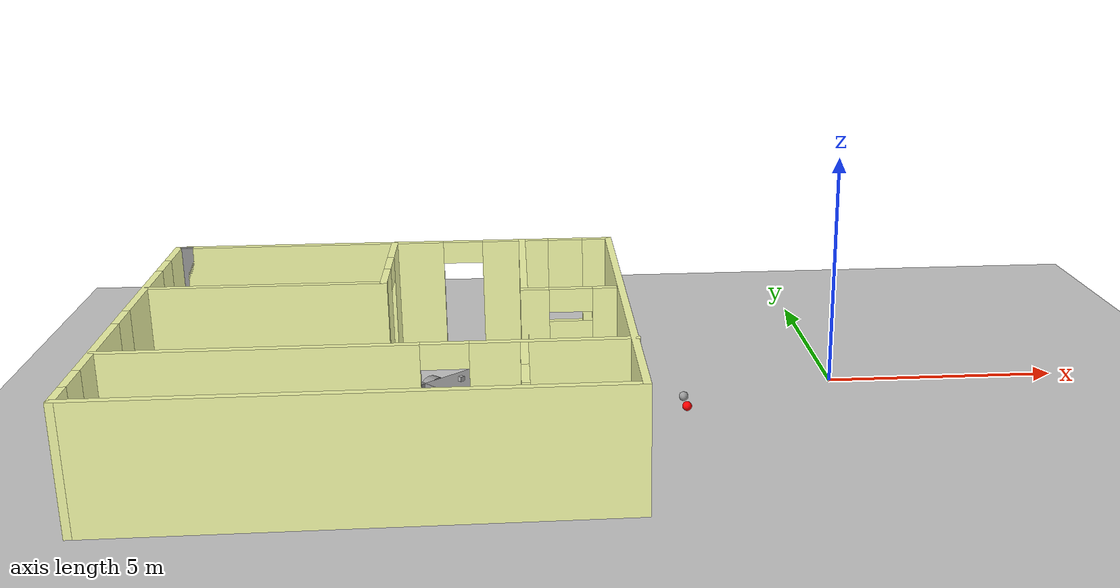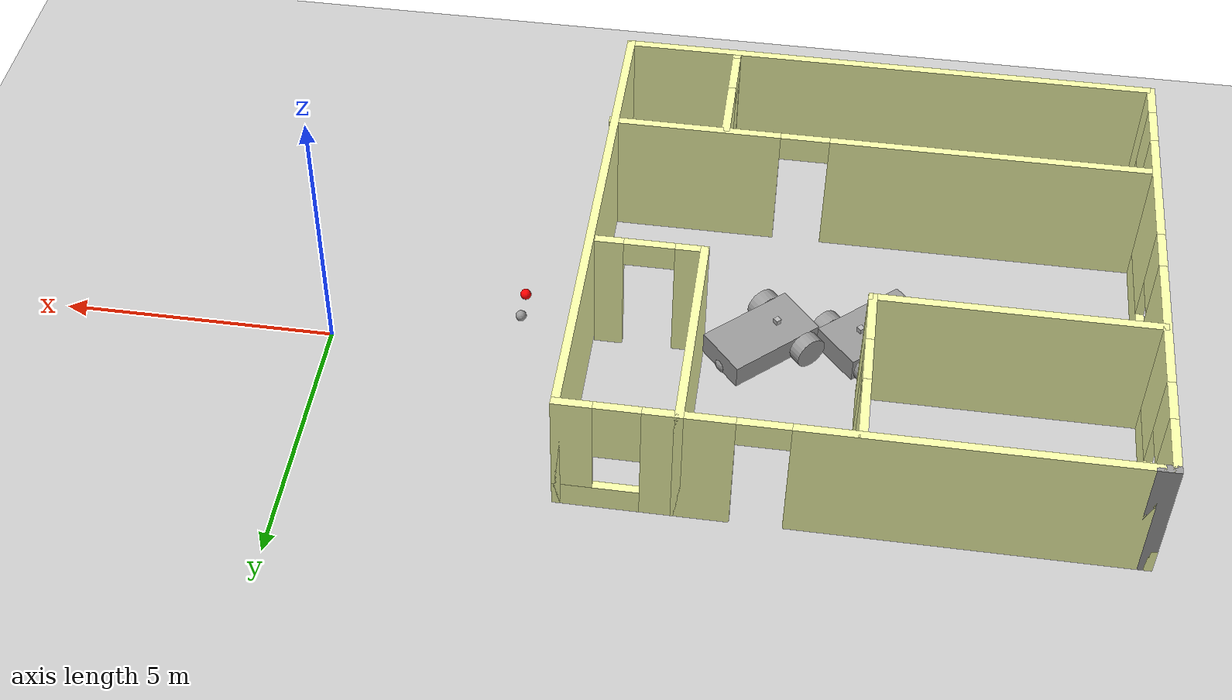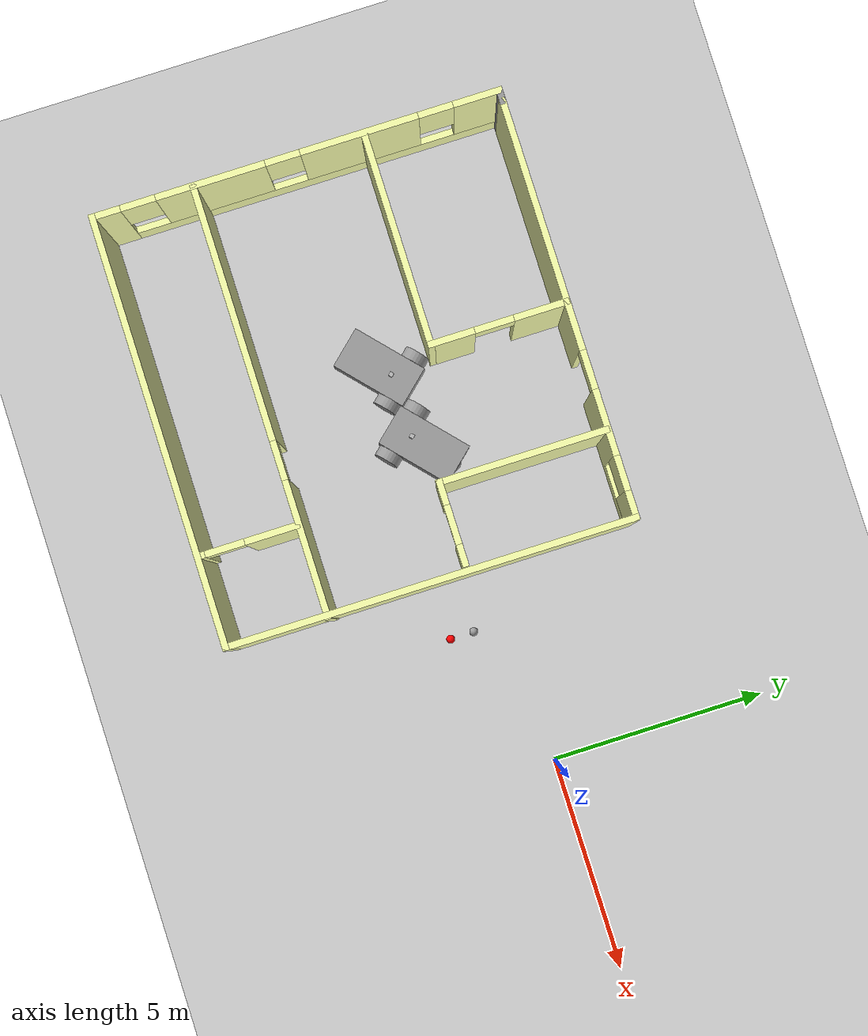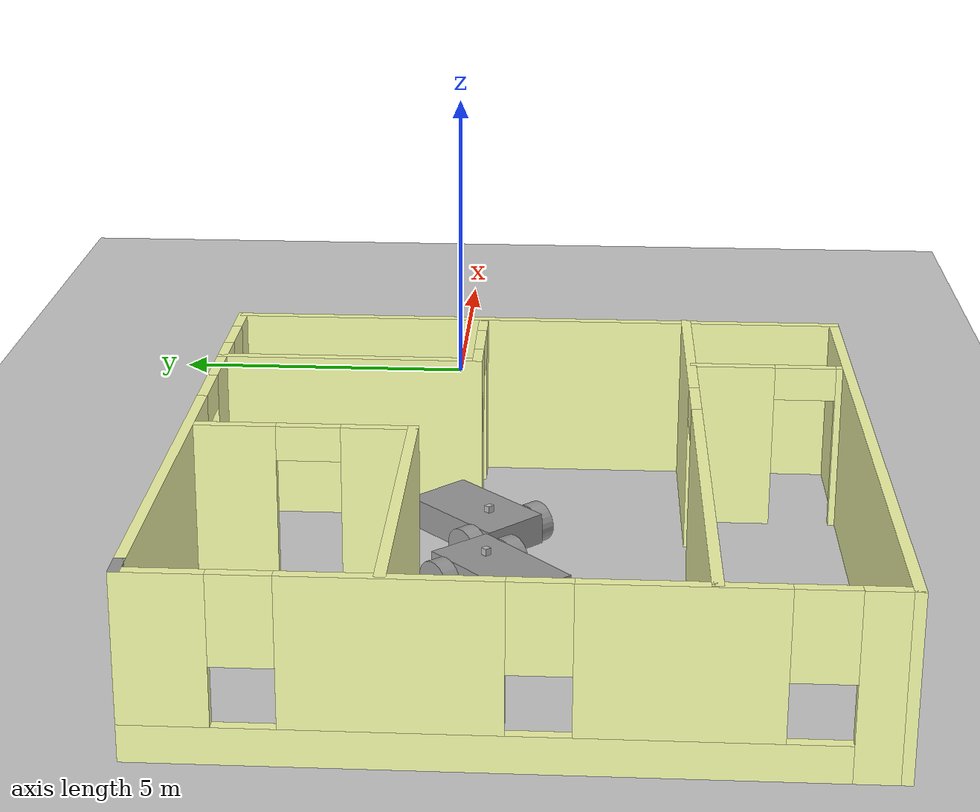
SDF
<sdf version="1.6">
 <world name="default">
  <plugin name="myworld" filename="libmyworld.so"/>
  <light name="sun" type="directional">
   <pose>0 0 10 0 -0 0</pose>
   <diffuse>0.8 0.8 0.8 1</diffuse>
   <specular>0.2 0.2 0.2 1</specular>
   <attenuation>
    <range>1000</range>
    <constant>0.9</constant>
    <linear>0.01</linear>
    <quadratic>0.001</quadratic>
   </attenuation>
   <direction>-0.5 0.1 -0.9</direction>
  </light>
  <model name="ground_plane">
   <static>1</static>
   <link name="link">
    <collision name="collision">
     <geometry><plane><normal>0 0 1</normal><size>100 100</size></plane></geometry>
     <surface><friction><ode><mu>100</mu><mu2>50</mu2></ode></friction></surface>
    </collision>
    <visual name="visual">
     <cast_shadows>0</cast_shadows>
     <geometry><plane><normal>0 0 1</normal><size>100 100</size></plane></geometry>
     <material>
      <script><uri>file://media/materials/scripts/gazebo.material</uri><name>Gazebo/Grey</name></script>
     </material>
    </visual>
   </link>
  </model>
  <gravity>0 0 -9.8</gravity>
  <magnetic_field>6e-06 2.3e-05 -4.2e-05</magnetic_field>
  <atmosphere type="adiabatic"/>
  <physics name="default_physics" default="0" type="ode">
   <max_step_size>0.001</max_step_size>
   <real_time_factor>1</real_time_factor>
   <real_time_update_rate>1000</real_time_update_rate>
  </physics>
  <scene><ambient>0.4 0.4 0.4 1</ambient><background>0.7 0.7 0.7 1</background><shadows>1</shadows></scene>
  <spherical_coordinates>
   <surface_model>EARTH_WGS84</surface_model>
   <latitude_deg>0</latitude_deg>
   <longitude_deg>0</longitude_deg>
   <elevation>0</elevation>
   <heading_deg>0</heading_deg>
  </spherical_coordinates>
  <model name="MyHouse">
   <pose>-9.5792 -1.47155 0 0 -0 0</pose>
   <link name="Wall_0">
    <pose>0.110625 4.675 0 0 -0 0</pose>
    <visual name="Wall_0_Visual_0">
     <pose>-1.95495 0 1.25 0 -0 0</pose>
     <geometry><box><size>5.84009 0.15 2.5</size></box></geometry>
     <material>
      <script><uri>file://media/materials/scripts/gazebo.material</uri><name>Gazebo/Grey</name></script>
      <ambient>0.972549 1 0.670588 1</ambient>
     </material>
     <meta><layer>0</layer></meta>
    </visual>
    <collision name="Wall_0_Collision_0">
     <geometry><box><size>5.84009 0.15 2.5</size></box></geometry>
     <pose>-1.95495 0 1.25 0 -0 0</pose>
    </collision>
    <visual name="Wall_0_Visual_1">
     <pose>2.62679 0 1.25 0 -0 0</pose>
     <geometry><box><size>1.5234 0.15 2.5</size></box></geometry>
     <material>
      <script><uri>file://media/materials/scripts/gazebo.material</uri><name>Gazebo/Grey</name></script>
      <ambient>0.972549 1 0.670588 1</ambient>
     </material>
     <meta><layer>0</layer></meta>
    </visual>
    <collision name="Wall_0_Collision_1">
     <geometry><box><size>1.5234 0.15 2.5</size></box></geometry>
     <pose>2.62679 0 1.25 0 -0 0</pose>
    </collision>
    <visual name="Wall_0_Visual_2">
     <pose>4.13175 0 0.25 0 -0 0</pose>
     <geometry><box><size>1.4865 0.15 0.5</size></box></geometry>
     <material>
      <script><uri>file://media/materials/scripts/gazebo.material</uri><name>Gazebo/Grey</name></script>
      <ambient>0.972549 1 0.670588 1</ambient>
     </material>
     <meta><layer>0</layer></meta>
    </visual>
    <collision name="Wall_0_Collision_2">
     <geometry><box><size>1.4865 0.15 0.5</size></box></geometry>
     <pose>4.13175 0 0.25 0 -0 0</pose>
    </collision>
    <visual name="Wall_0_Visual_3">
     <pose>4.53175 0 1.5 0 -0 0</pose>
     <geometry><box><size>0.686505 0.15 2</size></box></geometry>
     <material>
      <script><uri>file://media/materials/scripts/gazebo.material</uri><name>Gazebo/Grey</name></script>
      <ambient>0.972549 1 0.670588 1</ambient>
     </material>
     <meta><layer>0</layer></meta>
    </visual>
    <collision name="Wall_0_Collision_3">
     <geometry><box><size>0.686505 0.15 2</size></box></geometry>
     <pose>4.53175 0 1.5 0 -0 0</pose>
    </collision>
    <visual name="Wall_0_Visual_4">
     <pose>3.7885 0 1.9 0 -0 0</pose>
     <geometry><box><size>0.8 0.15 1.2</size></box></geometry>
     <material>
      <script><uri>file://media/materials/scripts/gazebo.material</uri><name>Gazebo/Grey</name></script>
      <ambient>0.972549 1 0.670588 1</ambient>
     </material>
     <meta><layer>0</layer></meta>
    </visual>
    <collision name="Wall_0_Collision_4">
     <geometry><box><size>0.8 0.15 1.2</size></box></geometry>
     <pose>3.7885 0 1.9 0 -0 0</pose>
    </collision>
    <visual name="Wall_0_Visual_5">
     <pose>1.41509 0 2.25 0 -0 0</pose>
     <geometry><box><size>0.9 0.15 0.5</size></box></geometry>
     <material>
      <script><uri>file://media/materials/scripts/gazebo.material</uri><name>Gazebo/Grey</name></script>
      <ambient>0.972549 1 0.670588 1</ambient>
     </material>
     <meta><layer>0</layer></meta>
    </visual>
    <collision name="Wall_0_Collision_5">
     <geometry><box><size>0.9 0.15 0.5</size></box></geometry>
     <pose>1.41509 0 2.25 0 -0 0</pose>
    </collision>
   </link>
   <link name="Wall_1">
    <collision name="Wall_1_Collision">
     <geometry><box><size>9.5 0.15 2.5</size></box></geometry>
     <pose>0 0 1.25 0 -0 0</pose>
    </collision>
    <visual name="Wall_1_Visual">
     <pose>0 0 1.25 0 -0 0</pose>
     <geometry><box><size>9.5 0.15 2.5</size></box></geometry>
     <material>
      <script><uri>file://media/materials/scripts/gazebo.material</uri><name>Gazebo/Grey</name></script>
      <ambient>0.972549 1 0.670588 1</ambient>
     </material>
     <meta><layer>0</layer></meta>
    </visual>
    <pose>4.91062 0 0 0 0 -1.5708</pose>
   </link>
   <link name="Wall_10">
    <pose>3.81844 0.825 0 0 -0 0</pose>
    <visual name="Wall_10_Visual_0">
     <pose>-0.704774 0 1.25 0 -0 0</pose>
     <geometry><box><size>0.590451 0.15 2.5</size></box></geometry>
     <material>
      <script><uri>file://media/materials/scripts/gazebo.material</uri><name>Gazebo/Grey</name></script>
      <ambient>0.972549 1 0.670588 1</ambient>
     </material>
     <meta><layer>0</layer></meta>
    </visual>
    <collision name="Wall_10_Collision_0">
     <geometry><box><size>0.590451 0.15 2.5</size></box></geometry>
     <pose>-0.704774 0 1.25 0 -0 0</pose>
    </collision>
    <visual name="Wall_10_Visual_1">
     <pose>0.745226 0 1.25 0 -0 0</pose>
     <geometry><box><size>0.509549 0.15 2.5</size></box></geometry>
     <material>
      <script><uri>file://media/materials/scripts/gazebo.material</uri><name>Gazebo/Grey</name></script>
      <ambient>0.972549 1 0.670588 1</ambient>
     </material>
     <meta><layer>0</layer></meta>
    </visual>
    <collision name="Wall_10_Collision_1">
     <geometry><box><size>0.509549 0.15 2.5</size></box></geometry>
     <pose>0.745226 0 1.25 0 -0 0</pose>
    </collision>
    <visual name="Wall_10_Visual_2">
     <pose>0.040451 0 2.25 0 -0 0</pose>
     <geometry><box><size>0.9 0.15 0.5</size></box></geometry>
     <material>
      <script><uri>file://media/materials/scripts/gazebo.material</uri><name>Gazebo/Grey</name></script>
      <ambient>0.972549 1 0.670588 1</ambient>
     </material>
     <meta><layer>0</layer></meta>
    </visual>
    <collision name="Wall_10_Collision_2">
     <geometry><box><size>0.9 0.15 0.5</size></box></geometry>
     <pose>0.040451 0 2.25 0 -0 0</pose>
    </collision>
   </link>
   <link name="Wall_12">
    <pose>0.014376 -2.36475 0 0 -0 0</pose>
    <visual name="Wall_12_Visual_0">
     <pose>-2.03973 0 1.25 0 -0 0</pose>
     <geometry><box><size>5.92055 0.15 2.5</size></box></geometry>
     <material>
      <script><uri>file://media/materials/scripts/gazebo.material</uri><name>Gazebo/Grey</name></script>
      <ambient>0.972549 1 0.670588 1</ambient>
     </material>
     <meta><layer>0</layer></meta>
    </visual>
    <collision name="Wall_12_Collision_0">
     <geometry><box><size>5.92055 0.15 2.5</size></box></geometry>
     <pose>-2.03973 0 1.25 0 -0 0</pose>
    </collision>
    <visual name="Wall_12_Visual_1">
     <pose>3.41027 0 1.25 0 -0 0</pose>
     <geometry><box><size>3.17945 0.15 2.5</size></box></geometry>
     <material>
      <script><uri>file://media/materials/scripts/gazebo.material</uri><name>Gazebo/Grey</name></script>
      <ambient>0.972549 1 0.670588 1</ambient>
     </material>
     <meta><layer>0</layer></meta>
    </visual>
    <collision name="Wall_12_Collision_1">
     <geometry><box><size>3.17945 0.15 2.5</size></box></geometry>
     <pose>3.41027 0 1.25 0 -0 0</pose>
    </collision>
    <visual name="Wall_12_Visual_2">
     <pose>1.37055 0 2.25 0 -0 0</pose>
     <geometry><box><size>0.9 0.15 0.5</size></box></geometry>
     <material>
      <script><uri>file://media/materials/scripts/gazebo.material</uri><name>Gazebo/Grey</name></script>
      <ambient>0.972549 1 0.670588 1</ambient>
     </material>
     <meta><layer>0</layer></meta>
    </visual>
    <collision name="Wall_12_Collision_2">
     <geometry><box><size>0.9 0.15 0.5</size></box></geometry>
     <pose>1.37055 0 2.25 0 -0 0</pose>
    </collision>
   </link>
   <link name="Wall_14">
    <pose>2.85322 -3.47509 0 0 0 -1.5708</pose>
    <visual name="Wall_14_Visual_0">
     <pose>-0.4979 0 1.25 0 -0 0</pose>
     <geometry><box><size>1.2542 0.15 2.5</size></box></geometry>
     <material>
      <script><uri>file://media/materials/scripts/gazebo.material</uri><name>Gazebo/Grey</name></script>
      <ambient>0.972549 1 0.670588 1</ambient>
     </material>
     <meta><layer>0</layer></meta>
    </visual>
    <collision name="Wall_14_Collision_0">
     <geometry><box><size>1.2542 0.15 2.5</size></box></geometry>
     <pose>-0.4979 0 1.25 0 -0 0</pose>
    </collision>
    <visual name="Wall_14_Visual_1">
     <pose>1.0771 0 1.25 0 -0 0</pose>
     <geometry><box><size>0.095801 0.15 2.5</size></box></geometry>
     <material>
      <script><uri>file://media/materials/scripts/gazebo.material</uri><name>Gazebo/Grey</name></script>
      <ambient>0.972549 1 0.670588 1</ambient>
     </material>
     <meta><layer>0</layer></meta>
    </visual>
    <collision name="Wall_14_Collision_1">
     <geometry><box><size>0.095801 0.15 2.5</size></box></geometry>
     <pose>1.0771 0 1.25 0 -0 0</pose>
    </collision>
    <visual name="Wall_14_Visual_2">
     <pose>0.579199 0 2.25 0 -0 0</pose>
     <geometry><box><size>0.9 0.15 0.5</size></box></geometry>
     <material>
      <script><uri>file://media/materials/scripts/gazebo.material</uri><name>Gazebo/Grey</name></script>
      <ambient>0.972549 1 0.670588 1</ambient>
     </material>
     <meta><layer>0</layer></meta>
    </visual>
    <collision name="Wall_14_Collision_2">
     <geometry><box><size>0.9 0.15 0.5</size></box></geometry>
     <pose>0.579199 0 2.25 0 -0 0</pose>
    </collision>
   </link>
   <link name="Wall_2">
    <collision name="Wall_2_Collision">
     <geometry><box><size>10 0.15 2.5</size></box></geometry>
     <pose>0 0 1.25 0 -0 0</pose>
    </collision>
    <visual name="Wall_2_Visual">
     <pose>0 0 1.25 0 -0 0</pose>
     <geometry><box><size>10 0.15 2.5</size></box></geometry>
     <material>
      <script><uri>file://media/materials/scripts/gazebo.material</uri><name>Gazebo/Grey</name></script>
      <ambient>0.972549 1 0.670588 1</ambient>
     </material>
     <meta><layer>0</layer></meta>
    </visual>
    <pose>-0.014375 -4.675 0 0 -0 3.14159</pose>
   </link>
   <link name="Wall_3">
    <pose>-4.93938 0 0 0 -0 1.5708</pose>
    <visual name="Wall_3_Visual_0">
     <pose>-4.39095 0 1.25 0 -0 0</pose>
     <geometry><box><size>0.718095 0.15 2.5</size></box></geometry>
     <material>
      <script><uri>file://media/materials/scripts/gazebo.material</uri><name>Gazebo/Grey</name></script>
      <ambient>0.972549 1 0.670588 1</ambient>
     </material>
     <meta><layer>0</layer></meta>
    </visual>
    <collision name="Wall_3_Collision_0">
     <geometry><box><size>0.718095 0.15 2.5</size></box></geometry>
     <pose>-4.39095 0 1.25 0 -0 0</pose>
    </collision>
    <visual name="Wall_3_Visual_1">
     <pose>0.359047 0 0.25 0 -0 0</pose>
     <geometry><box><size>8.78191 0.15 0.5</size></box></geometry>
     <material>
      <script><uri>file://media/materials/scripts/gazebo.material</uri><name>Gazebo/Grey</name></script>
      <ambient>0.972549 1 0.670588 1</ambient>
     </material>
     <meta><layer>0</layer></meta>
    </visual>
    <collision name="Wall_3_Collision_1">
     <geometry><box><size>8.78191 0.15 0.5</size></box></geometry>
     <pose>0.359047 0 0.25 0 -0 0</pose>
    </collision>
    <visual name="Wall_3_Visual_2">
     <pose>-1.97254 0 1.5 0 -0 0</pose>
     <geometry><box><size>2.51874 0.15 2</size></box></geometry>
     <material>
      <script><uri>file://media/materials/scripts/gazebo.material</uri><name>Gazebo/Grey</name></script>
      <ambient>0.972549 1 0.670588 1</ambient>
     </material>
     <meta><layer>0</layer></meta>
    </visual>
    <collision name="Wall_3_Collision_2">
     <geometry><box><size>2.51874 0.15 2</size></box></geometry>
     <pose>-1.97254 0 1.5 0 -0 0</pose>
    </collision>
    <visual name="Wall_3_Visual_3">
     <pose>1.44677 0 1.5 0 -0 0</pose>
     <geometry><box><size>2.71988 0.15 2</size></box></geometry>
     <material>
      <script><uri>file://media/materials/scripts/gazebo.material</uri><name>Gazebo/Grey</name></script>
      <ambient>0.972549 1 0.670588 1</ambient>
     </material>
     <meta><layer>0</layer></meta>
    </visual>
    <collision name="Wall_3_Collision_3">
     <geometry><box><size>2.71988 0.15 2</size></box></geometry>
     <pose>1.44677 0 1.5 0 -0 0</pose>
    </collision>
    <visual name="Wall_3_Visual_4">
     <pose>4.17835 0 1.5 0 -0 0</pose>
     <geometry><box><size>1.14329 0.15 2</size></box></geometry>
     <material>
      <script><uri>file://media/materials/scripts/gazebo.material</uri><name>Gazebo/Grey</name></script>
      <ambient>0.972549 1 0.670588 1</ambient>
     </material>
     <meta><layer>0</layer></meta>
    </visual>
    <collision name="Wall_3_Collision_4">
     <geometry><box><size>1.14329 0.15 2</size></box></geometry>
     <pose>4.17835 0 1.5 0 -0 0</pose>
    </collision>
    <visual name="Wall_3_Visual_5">
     <pose>-3.63191 0 1.9 0 -0 0</pose>
     <geometry><box><size>0.8 0.15 1.2</size></box></geometry>
     <material>
      <script><uri>file://media/materials/scripts/gazebo.material</uri><name>Gazebo/Grey</name></script>
      <ambient>0.972549 1 0.670588 1</ambient>
     </material>
     <meta><layer>0</layer></meta>
    </visual>
    <collision name="Wall_3_Collision_5">
     <geometry><box><size>0.8 0.15 1.2</size></box></geometry>
     <pose>-3.63191 0 1.9 0 -0 0</pose>
    </collision>
    <visual name="Wall_3_Visual_6">
     <pose>-0.313166 0 1.9 0 -0 0</pose>
     <geometry><box><size>0.8 0.15 1.2</size></box></geometry>
     <material>
      <script><uri>file://media/materials/scripts/gazebo.material</uri><name>Gazebo/Grey</name></script>
      <ambient>0.972549 1 0.670588 1</ambient>
     </material>
     <meta><layer>0</layer></meta>
    </visual>
    <collision name="Wall_3_Collision_6">
     <geometry><box><size>0.8 0.15 1.2</size></box></geometry>
     <pose>-0.313166 0 1.9 0 -0 0</pose>
    </collision>
    <visual name="Wall_3_Visual_7">
     <pose>3.20671 0 1.9 0 -0 0</pose>
     <geometry><box><size>0.8 0.15 1.2</size></box></geometry>
     <material>
      <script><uri>file://media/materials/scripts/gazebo.material</uri><name>Gazebo/Grey</name></script>
      <ambient>0.972549 1 0.670588 1</ambient>
     </material>
     <meta><layer>0</layer></meta>
    </visual>
    <collision name="Wall_3_Collision_7">
     <geometry><box><size>0.8 0.15 1.2</size></box></geometry>
     <pose>3.20671 0 1.9 0 -0 0</pose>
    </collision>
   </link>
   <link name="Wall_4">
    <collision name="Wall_4_Collision">
     <geometry><box><size>0.4 0.15 2.5</size></box></geometry>
     <pose>0 0 1.25 0 -0 0</pose>
    </collision>
    <visual name="Wall_4_Visual">
     <pose>0 0 1.25 0 -0 0</pose>
     <geometry><box><size>0.4 0.15 2.5</size></box></geometry>
     <material>
      <script><uri>file://media/materials/scripts/gazebo.material</uri><name>Gazebo/Grey</name></script>
      <ambient>1 1 1 1</ambient>
     </material>
     <meta><layer>0</layer></meta>
    </visual>
    <pose>-4.81438 4.675 0 0 -0 0</pose>
   </link>
   <link name="Wall_6">
    <pose>-0.043139 3.10489 0 0 0 -1.5708</pose>
    <visual name="Wall_6_Visual_0">
     <pose>-0.987844 0 1.25 0 -0 0</pose>
     <geometry><box><size>1.27431 0.15 2.5</size></box></geometry>
     <material>
      <script><uri>file://media/materials/scripts/gazebo.material</uri><name>Gazebo/Grey</name></script>
      <ambient>0.972549 1 0.670588 1</ambient>
     </material>
     <meta><layer>0</layer></meta>
    </visual>
    <collision name="Wall_6_Collision_0">
     <geometry><box><size>1.27431 0.15 2.5</size></box></geometry>
     <pose>-0.987844 0 1.25 0 -0 0</pose>
    </collision>
    <visual name="Wall_6_Visual_1">
     <pose>1.08716 0 1.25 0 -0 0</pose>
     <geometry><box><size>1.07569 0.15 2.5</size></box></geometry>
     <material>
      <script><uri>file://media/materials/scripts/gazebo.material</uri><name>Gazebo/Grey</name></script>
      <ambient>0.972549 1 0.670588 1</ambient>
     </material>
     <meta><layer>0</layer></meta>
    </visual>
    <collision name="Wall_6_Collision_1">
     <geometry><box><size>1.07569 0.15 2.5</size></box></geometry>
     <pose>1.08716 0 1.25 0 -0 0</pose>
    </collision>
    <visual name="Wall_6_Visual_2">
     <pose>0.099313 0 2.25 0 -0 0</pose>
     <geometry><box><size>0.9 0.15 0.5</size></box></geometry>
     <material>
      <script><uri>file://media/materials/scripts/gazebo.material</uri><name>Gazebo/Grey</name></script>
      <ambient>0.972549 1 0.670588 1</ambient>
     </material>
     <meta><layer>0</layer></meta>
    </visual>
    <collision name="Wall_6_Collision_2">
     <geometry><box><size>0.9 0.15 0.5</size></box></geometry>
     <pose>0.099313 0 2.25 0 -0 0</pose>
    </collision>
   </link>
   <link name="Wall_7">
    <collision name="Wall_7_Collision">
     <geometry><box><size>5 0.15 2.5</size></box></geometry>
     <pose>0 0 1.25 0 -0 0</pose>
    </collision>
    <visual name="Wall_7_Visual">
     <pose>0 0 1.25 0 -0 0</pose>
     <geometry><box><size>5 0.15 2.5</size></box></geometry>
     <material>
      <script><uri>file://media/materials/scripts/gazebo.material</uri><name>Gazebo/Grey</name></script>
      <ambient>0.972549 1 0.670588 1</ambient>
     </material>
     <meta><layer>0</layer></meta>
    </visual>
    <pose>-2.46814 1.55489 0 0 -0 3.14159</pose>
   </link>
   <link name="Wall_9">
    <collision name="Wall_9_Collision">
     <geometry><box><size>4 0.15 2.5</size></box></geometry>
     <pose>0 0 1.25 0 -0 0</pose>
    </collision>
    <visual name="Wall_9_Visual">
     <pose>0 0 1.25 0 -0 0</pose>
     <geometry><box><size>4 0.15 2.5</size></box></geometry>
     <material>
      <script><uri>file://media/materials/scripts/gazebo.material</uri><name>Gazebo/Grey</name></script>
      <ambient>0.972549 1 0.670588 1</ambient>
     </material>
     <meta><layer>0</layer></meta>
    </visual>
    <pose>2.89344 2.75 0 0 0 -1.5708</pose>
   </link>
   <static>1</static>
  </model>
  <model name="MyRobot">
   <link name="link_0">
    <pose>0.539126 0.509512 0.366798 0 -0 0</pose>
    <inertial>
     <mass>0.83005</mass>
     <inertia>
      <ixx>0.0833479</ixx>
      <ixy>0</ixy>
      <ixz>0</ixz>
      <iyy>0.246699</iyy>
      <iyz>0</iyz>
      <izz>0.301693</izz>
     </inertia>
    </inertial>
    <visual name="visual">
     <geometry><box><size>1.83346 1 0.452722</size></box></geometry>
     <material>
      <lighting>1</lighting>
      <script><uri>file://media/materials/scripts/gazebo.material</uri><name>Gazebo/Grey</name></script>
      <shader type="pixel"><normal_map>__default__</normal_map></shader>
      <ambient>0.3 0.3 0.3 1</ambient>
      <diffuse>0.7 0.7 0.7 1</diffuse>
      <specular>0.01 0.01 0.01 1</specular>
      <emissive>0 0 0 1</emissive>
     </material>
    </visual>
    <collision name="collision">
     <geometry><box><size>1.83346 1 0.452722</size></box></geometry>
     <surface>
      <friction>
       <ode><mu>1</mu><mu2>1</mu2><fdir1>0 0 0</fdir1><slip1>0</slip1><slip2>0</slip2></ode>
       <torsional>
        <coefficient>1</coefficient>
        <patch_radius>0</patch_radius>
        <surface_radius>0</surface_radius>
        <use_patch_radius>1</use_patch_radius>
        <ode><slip>0</slip></ode>
       </torsional>
      </friction>
      <bounce><restitution_coefficient>0</restitution_coefficient><threshold>1e+06</threshold></bounce>
      <contact>
       <collide_without_contact>0</collide_without_contact>
       <collide_without_contact_bitmask>1</collide_without_contact_bitmask>
       <collide_bitmask>1</collide_bitmask>
       <ode>
        <soft_cfm>0</soft_cfm>
        <soft_erp>0.2</soft_erp>
        <kp>1e+13</kp>
        <kd>1</kd>
        <max_vel>0.01</max_vel>
        <min_depth>0</min_depth>
       </ode>
       <bullet>
        <split_impulse>1</split_impulse>
        <split_impulse_penetration_threshold>-0.01</split_impulse_penetration_threshold>
        <soft_cfm>0</soft_cfm>
        <soft_erp>0.2</soft_erp>
        <kp>1e+13</kp>
        <kd>1</kd>
       </bullet>
      </contact>
     </surface>
    </collision>
   </link>
   <link name="link_1">
    <pose>1.11479 -0.112651 0.314627 1.5707 -0 0</pose>
    <inertial>
     <mass>1</mass>
     <inertia><ixx>0.145833</ixx><ixy>0</ixy><ixz>0</ixz><iyy>0.145833</iyy><iyz>0</iyz><izz>0.125</izz></inertia>
    </inertial>
    <visual name="visual">
     <geometry><cylinder><radius>0.3</radius><length>0.25</length></cylinder></geometry>
     <material>
      <lighting>1</lighting>
      <script><uri>file://media/materials/scripts/gazebo.material</uri><name>Gazebo/Grey</name></script>
      <shader type="pixel"><normal_map>__default__</normal_map></shader>
      <ambient>0.3 0.3 0.3 1</ambient>
      <diffuse>0.7 0.7 0.7 1</diffuse>
      <specular>0.01 0.01 0.01 1</specular>
      <emissive>0 0 0 1</emissive>
     </material>
    </visual>
    <collision name="collision">
     <geometry><cylinder><radius>0.3</radius><length>0.25</length></cylinder></geometry>
     <surface>
      <friction>
       <ode><mu>1</mu><mu2>1</mu2><fdir1>0 0 0</fdir1><slip1>0</slip1><slip2>0</slip2></ode>
       <torsional>
        <coefficient>1</coefficient>
        <patch_radius>0</patch_radius>
        <surface_radius>0</surface_radius>
        <use_patch_radius>1</use_patch_radius>
        <ode><slip>0</slip></ode>
       </torsional>
      </friction>
      <bounce><restitution_coefficient>0</restitution_coefficient><threshold>1e+06</threshold></bounce>
      <contact>
       <collide_without_contact>0</collide_without_contact>
       <collide_without_contact_bitmask>1</collide_without_contact_bitmask>
       <collide_bitmask>1</collide_bitmask>
       <ode>
        <soft_cfm>0</soft_cfm>
        <soft_erp>0.2</soft_erp>
        <kp>1e+13</kp>
        <kd>1</kd>
        <max_vel>0.01</max_vel>
        <min_depth>0</min_depth>
       </ode>
       <bullet>
        <split_impulse>1</split_impulse>
        <split_impulse_penetration_threshold>-0.01</split_impulse_penetration_threshold>
        <soft_cfm>0</soft_cfm>
        <soft_erp>0.2</soft_erp>
        <kp>1e+13</kp>
        <kd>1</kd>
       </bullet>
      </contact>
     </surface>
    </collision>
   </link>
   <link name="link_1_clone">
    <pose>1.11479 1.13741 0.314627 1.5707 -0 0</pose>
    <inertial>
     <mass>1</mass>
     <inertia><ixx>0.145833</ixx><ixy>0</ixy><ixz>0</ixz><iyy>0.145833</iyy><iyz>0</iyz><izz>0.125</izz></inertia>
    </inertial>
    <visual name="visual">
     <geometry><cylinder><radius>0.3</radius><length>0.25</length></cylinder></geometry>
     <material>
      <lighting>1</lighting>
      <script><uri>file://media/materials/scripts/gazebo.material</uri><name>Gazebo/Grey</name></script>
      <shader type="pixel"><normal_map>__default__</normal_map></shader>
      <ambient>0.3 0.3 0.3 1</ambient>
      <diffuse>0.7 0.7 0.7 1</diffuse>
      <specular>0.01 0.01 0.01 1</specular>
      <emissive>0 0 0 1</emissive>
     </material>
    </visual>
    <collision name="collision">
     <geometry><cylinder><radius>0.3</radius><length>0.25</length></cylinder></geometry>
     <surface>
      <friction>
       <ode><mu>1</mu><mu2>1</mu2><fdir1>0 0 0</fdir1><slip1>0</slip1><slip2>0</slip2></ode>
       <torsional>
        <coefficient>1</coefficient>
        <patch_radius>0</patch_radius>
        <surface_radius>0</surface_radius>
        <use_patch_radius>1</use_patch_radius>
        <ode><slip>0</slip></ode>
       </torsional>
      </friction>
      <bounce><restitution_coefficient>0</restitution_coefficient><threshold>1e+06</threshold></bounce>
      <contact>
       <collide_without_contact>0</collide_without_contact>
       <collide_without_contact_bitmask>1</collide_without_contact_bitmask>
       <collide_bitmask>1</collide_bitmask>
       <ode>
        <soft_cfm>0</soft_cfm>
        <soft_erp>0.2</soft_erp>
        <kp>1e+13</kp>
        <kd>1</kd>
        <max_vel>0.01</max_vel>
        <min_depth>0</min_depth>
       </ode>
       <bullet>
        <split_impulse>1</split_impulse>
        <split_impulse_penetration_threshold>-0.01</split_impulse_penetration_threshold>
        <soft_cfm>0</soft_cfm>
        <soft_erp>0.2</soft_erp>
        <kp>1e+13</kp>
        <kd>1</kd>
       </bullet>
      </contact>
     </surface>
    </collision>
   </link>
   <link name="link_2">
    <pose>-0.21867 0.512378 0.214627 0 -0 0</pose>
    <inertial>
     <mass>1</mass>
     <inertia><ixx>0.1</ixx><ixy>0</ixy><ixz>0</ixz><iyy>0.1</iyy><iyz>0</iyz><izz>0.1</izz></inertia>
    </inertial>
    <visual name="visual">
     <geometry><sphere><radius>0.2</radius></sphere></geometry>
     <material>
      <lighting>1</lighting>
      <script><uri>file://media/materials/scripts/gazebo.material</uri><name>Gazebo/Grey</name></script>
      <shader type="pixel"><normal_map>__default__</normal_map></shader>
      <ambient>0.3 0.3 0.3 1</ambient>
      <diffuse>0.7 0.7 0.7 1</diffuse>
      <specular>0.01 0.01 0.01 1</specular>
      <emissive>0 0 0 1</emissive>
     </material>
    </visual>
    <collision name="collision">
     <geometry><sphere><radius>0.2</radius></sphere></geometry>
     <surface>
      <friction>
       <ode><mu>1</mu><mu2>1</mu2><fdir1>0 0 0</fdir1><slip1>0</slip1><slip2>0</slip2></ode>
       <torsional>
        <coefficient>1</coefficient>
        <patch_radius>0</patch_radius>
        <surface_radius>0</surface_radius>
        <use_patch_radius>1</use_patch_radius>
        <ode><slip>0</slip></ode>
       </torsional>
      </friction>
      <bounce><restitution_coefficient>0</restitution_coefficient><threshold>1e+06</threshold></bounce>
      <contact>
       <collide_without_contact>0</collide_without_contact>
       <collide_without_contact_bitmask>1</collide_without_contact_bitmask>
       <collide_bitmask>1</collide_bitmask>
       <ode>
        <soft_cfm>0</soft_cfm>
        <soft_erp>0.2</soft_erp>
        <kp>1e+13</kp>
        <kd>1</kd>
        <max_vel>0.01</max_vel>
        <min_depth>0</min_depth>
       </ode>
       <bullet>
        <split_impulse>1</split_impulse>
        <split_impulse_penetration_threshold>-0.01</split_impulse_penetration_threshold>
        <soft_cfm>0</soft_cfm>
        <soft_erp>0.2</soft_erp>
        <kp>1e+13</kp>
        <kd>1</kd>
       </bullet>
      </contact>
     </surface>
    </collision>
   </link>
   <model name="depth_camera">
    <link name="link">
     <pose>0 0 0.05 0 -0 0</pose>
     <inertial>
      <mass>0.1</mass>
      <inertia>
       <ixx>0.000166667</ixx>
       <iyy>0.000166667</iyy>
       <izz>0.000166667</izz>
       <ixy>0</ixy>
       <ixz>0</ixz>
       <iyz>0</iyz>
      </inertia>
     </inertial>
     <collision name="collision"><geometry><box><size>0.1 0.1 0.1</size></box></geometry></collision>
     <visual name="visual"><geometry><box><size>0.1 0.1 0.1</size></box></geometry></visual>
     <sensor name="camera" type="depth">
      <camera name="__default__">
       <horizontal_fov>1.047</horizontal_fov>
       <image><width>320</width><height>240</height></image>
       <clip><near>0.1</near><far>100</far></clip>
      </camera>
      <always_on>1</always_on>
      <update_rate>30</update_rate>
      <visualize>1</visualize>
     </sensor>
    </link>
    <pose>0.874732 0.495982 0.607098 0 -0 0</pose>
   </model>
   <joint name="link_0_JOINT_0" type="revolute">
    <parent>link_0</parent>
    <child>link_1</child>
    <axis>
     <xyz>0 0 1</xyz>
     <use_parent_model_frame>0</use_parent_model_frame>
     <limit>
      <lower>-1.79769e+308</lower>
      <upper>1.79769e+308</upper>
      <effort>-1</effort>
      <velocity>-1</velocity>
     </limit>
     <dynamics>
      <spring_reference>0</spring_reference>
      <spring_stiffness>0</spring_stiffness>
      <damping>0</damping>
      <friction>0</friction>
     </dynamics>
    </axis>
    <physics>
     <ode><limit><cfm>0</cfm><erp>0.2</erp></limit><suspension><cfm>0</cfm><erp>0.2</erp></suspension></ode>
    </physics>
   </joint>
   <joint name="link_0_JOINT_1" type="revolute">
    <parent>link_0</parent>
    <child>link_1_clone</child>
    <axis>
     <xyz>0 0 1</xyz>
     <use_parent_model_frame>0</use_parent_model_frame>
     <limit>
      <lower>-1.79769e+308</lower>
      <upper>1.79769e+308</upper>
      <effort>-1</effort>
      <velocity>-1</velocity>
     </limit>
     <dynamics>
      <spring_reference>0</spring_reference>
      <spring_stiffness>0</spring_stiffness>
      <damping>0</damping>
      <friction>0</friction>
     </dynamics>
    </axis>
    <physics>
     <ode><limit><cfm>0</cfm><erp>0.2</erp></limit><suspension><cfm>0</cfm><erp>0.2</erp></suspension></ode>
    </physics>
   </joint>
   <joint name="link_0_JOINT_2" type="ball">
    <parent>link_0</parent>
    <child>link_2</child>
    <physics>
     <ode><limit><cfm>0</cfm><erp>0.2</erp></limit><suspension><cfm>0</cfm><erp>0.2</erp></suspension></ode>
    </physics>
   </joint>
   <joint name="link_0_JOINT_4" type="fixed">
    <parent>link_0</parent>
    <child>depth_camera::link</child>
    <physics>
     <ode><limit><cfm>0</cfm><erp>0.2</erp></limit><suspension><cfm>0</cfm><erp>0.2</erp></suspension></ode>
    </physics>
   </joint>
   <static>0</static>
   <plugin name="follower" filename="libFollowerPlugin.so"/>
   <pose>-9.85155 -1.87705 -0.014607 -2.8e-05 -2.6e-05 0.73567</pose>
  </model>
  <model name="MyRobot_0">
   <link name="link_0">
    <pose>0.539126 0.509512 0.366798 0 -0 0</pose>
    <inertial>
     <mass>0.83005</mass>
     <inertia>
      <ixx>0.0833479</ixx>
      <ixy>0</ixy>
      <ixz>0</ixz>
      <iyy>0.246699</iyy>
      <iyz>0</iyz>
      <izz>0.301693</izz>
     </inertia>
    </inertial>
    <visual name="visual">
     <geometry><box><size>1.83346 1 0.452722</size></box></geometry>
     <material>
      <lighting>1</lighting>
      <script><uri>file://media/materials/scripts/gazebo.material</uri><name>Gazebo/Grey</name></script>
      <shader type="pixel"><normal_map>__default__</normal_map></shader>
      <ambient>0.3 0.3 0.3 1</ambient>
      <diffuse>0.7 0.7 0.7 1</diffuse>
      <specular>0.01 0.01 0.01 1</specular>
      <emissive>0 0 0 1</emissive>
     </material>
    </visual>
    <collision name="collision">
     <geometry><box><size>1.83346 1 0.452722</size></box></geometry>
     <surface>
      <friction>
       <ode><mu>1</mu><mu2>1</mu2><fdir1>0 0 0</fdir1><slip1>0</slip1><slip2>0</slip2></ode>
       <torsional>
        <coefficient>1</coefficient>
        <patch_radius>0</patch_radius>
        <surface_radius>0</surface_radius>
        <use_patch_radius>1</use_patch_radius>
        <ode><slip>0</slip></ode>
       </torsional>
      </friction>
      <bounce><restitution_coefficient>0</restitution_coefficient><threshold>1e+06</threshold></bounce>
      <contact>
       <collide_without_contact>0</collide_without_contact>
       <collide_without_contact_bitmask>1</collide_without_contact_bitmask>
       <collide_bitmask>1</collide_bitmask>
       <ode>
        <soft_cfm>0</soft_cfm>
        <soft_erp>0.2</soft_erp>
        <kp>1e+13</kp>
        <kd>1</kd>
        <max_vel>0.01</max_vel>
        <min_depth>0</min_depth>
       </ode>
       <bullet>
        <split_impulse>1</split_impulse>
        <split_impulse_penetration_threshold>-0.01</split_impulse_penetration_threshold>
        <soft_cfm>0</soft_cfm>
        <soft_erp>0.2</soft_erp>
        <kp>1e+13</kp>
        <kd>1</kd>
       </bullet>
      </contact>
     </surface>
    </collision>
   </link>
   <link name="link_1">
    <pose>1.11479 -0.112651 0.314627 1.5707 -0 0</pose>
    <inertial>
     <mass>1</mass>
     <inertia><ixx>0.145833</ixx><ixy>0</ixy><ixz>0</ixz><iyy>0.145833</iyy><iyz>0</iyz><izz>0.125</izz></inertia>
    </inertial>
    <visual name="visual">
     <geometry><cylinder><radius>0.3</radius><length>0.25</length></cylinder></geometry>
     <material>
      <lighting>1</lighting>
      <script><uri>file://media/materials/scripts/gazebo.material</uri><name>Gazebo/Grey</name></script>
      <shader type="pixel"><normal_map>__default__</normal_map></shader>
      <ambient>0.3 0.3 0.3 1</ambient>
      <diffuse>0.7 0.7 0.7 1</diffuse>
      <specular>0.01 0.01 0.01 1</specular>
      <emissive>0 0 0 1</emissive>
     </material>
    </visual>
    <collision name="collision">
     <geometry><cylinder><radius>0.3</radius><length>0.25</length></cylinder></geometry>
     <surface>
      <friction>
       <ode><mu>1</mu><mu2>1</mu2><fdir1>0 0 0</fdir1><slip1>0</slip1><slip2>0</slip2></ode>
       <torsional>
        <coefficient>1</coefficient>
        <patch_radius>0</patch_radius>
        <surface_radius>0</surface_radius>
        <use_patch_radius>1</use_patch_radius>
        <ode><slip>0</slip></ode>
       </torsional>
      </friction>
      <bounce><restitution_coefficient>0</restitution_coefficient><threshold>1e+06</threshold></bounce>
      <contact>
       <collide_without_contact>0</collide_without_contact>
       <collide_without_contact_bitmask>1</collide_without_contact_bitmask>
       <collide_bitmask>1</collide_bitmask>
       <ode>
        <soft_cfm>0</soft_cfm>
        <soft_erp>0.2</soft_erp>
        <kp>1e+13</kp>
        <kd>1</kd>
        <max_vel>0.01</max_vel>
        <min_depth>0</min_depth>
       </ode>
       <bullet>
        <split_impulse>1</split_impulse>
        <split_impulse_penetration_threshold>-0.01</split_impulse_penetration_threshold>
        <soft_cfm>0</soft_cfm>
        <soft_erp>0.2</soft_erp>
        <kp>1e+13</kp>
        <kd>1</kd>
       </bullet>
      </contact>
     </surface>
    </collision>
   </link>
   <link name="link_1_clone">
    <pose>1.11479 1.13741 0.314627 1.5707 -0 0</pose>
    <inertial>
     <mass>1</mass>
     <inertia><ixx>0.145833</ixx><ixy>0</ixy><ixz>0</ixz><iyy>0.145833</iyy><iyz>0</iyz><izz>0.125</izz></inertia>
    </inertial>
    <visual name="visual">
     <geometry><cylinder><radius>0.3</radius><length>0.25</length></cylinder></geometry>
     <material>
      <lighting>1</lighting>
      <script><uri>file://media/materials/scripts/gazebo.material</uri><name>Gazebo/Grey</name></script>
      <shader type="pixel"><normal_map>__default__</normal_map></shader>
      <ambient>0.3 0.3 0.3 1</ambient>
      <diffuse>0.7 0.7 0.7 1</diffuse>
      <specular>0.01 0.01 0.01 1</specular>
      <emissive>0 0 0 1</emissive>
     </material>
    </visual>
    <collision name="collision">
     <geometry><cylinder><radius>0.3</radius><length>0.25</length></cylinder></geometry>
     <surface>
      <friction>
       <ode><mu>1</mu><mu2>1</mu2><fdir1>0 0 0</fdir1><slip1>0</slip1><slip2>0</slip2></ode>
       <torsional>
        <coefficient>1</coefficient>
        <patch_radius>0</patch_radius>
        <surface_radius>0</surface_radius>
        <use_patch_radius>1</use_patch_radius>
        <ode><slip>0</slip></ode>
       </torsional>
      </friction>
      <bounce><restitution_coefficient>0</restitution_coefficient><threshold>1e+06</threshold></bounce>
      <contact>
       <collide_without_contact>0</collide_without_contact>
       <collide_without_contact_bitmask>1</collide_without_contact_bitmask>
       <collide_bitmask>1</collide_bitmask>
       <ode>
        <soft_cfm>0</soft_cfm>
        <soft_erp>0.2</soft_erp>
        <kp>1e+13</kp>
        <kd>1</kd>
        <max_vel>0.01</max_vel>
        <min_depth>0</min_depth>
       </ode>
       <bullet>
        <split_impulse>1</split_impulse>
        <split_impulse_penetration_threshold>-0.01</split_impulse_penetration_threshold>
        <soft_cfm>0</soft_cfm>
        <soft_erp>0.2</soft_erp>
        <kp>1e+13</kp>
        <kd>1</kd>
       </bullet>
      </contact>
     </surface>
    </collision>
   </link>
   <link name="link_2">
    <pose>-0.21867 0.512378 0.214627 0 -0 0</pose>
    <inertial>
     <mass>1</mass>
     <inertia><ixx>0.1</ixx><ixy>0</ixy><ixz>0</ixz><iyy>0.1</iyy><iyz>0</iyz><izz>0.1</izz></inertia>
    </inertial>
    <visual name="visual">
     <geometry><sphere><radius>0.2</radius></sphere></geometry>
     <material>
      <lighting>1</lighting>
      <script><uri>file://media/materials/scripts/gazebo.material</uri><name>Gazebo/Grey</name></script>
      <shader type="pixel"><normal_map>__default__</normal_map></shader>
      <ambient>0.3 0.3 0.3 1</ambient>
      <diffuse>0.7 0.7 0.7 1</diffuse>
      <specular>0.01 0.01 0.01 1</specular>
      <emissive>0 0 0 1</emissive>
     </material>
    </visual>
    <collision name="collision">
     <geometry><sphere><radius>0.2</radius></sphere></geometry>
     <surface>
      <friction>
       <ode><mu>1</mu><mu2>1</mu2><fdir1>0 0 0</fdir1><slip1>0</slip1><slip2>0</slip2></ode>
       <torsional>
        <coefficient>1</coefficient>
        <patch_radius>0</patch_radius>
        <surface_radius>0</surface_radius>
        <use_patch_radius>1</use_patch_radius>
        <ode><slip>0</slip></ode>
       </torsional>
      </friction>
      <bounce><restitution_coefficient>0</restitution_coefficient><threshold>1e+06</threshold></bounce>
      <contact>
       <collide_without_contact>0</collide_without_contact>
       <collide_without_contact_bitmask>1</collide_without_contact_bitmask>
       <collide_bitmask>1</collide_bitmask>
       <ode>
        <soft_cfm>0</soft_cfm>
        <soft_erp>0.2</soft_erp>
        <kp>1e+13</kp>
        <kd>1</kd>
        <max_vel>0.01</max_vel>
        <min_depth>0</min_depth>
       </ode>
       <bullet>
        <split_impulse>1</split_impulse>
        <split_impulse_penetration_threshold>-0.01</split_impulse_penetration_threshold>
        <soft_cfm>0</soft_cfm>
        <soft_erp>0.2</soft_erp>
        <kp>1e+13</kp>
        <kd>1</kd>
       </bullet>
      </contact>
     </surface>
    </collision>
   </link>
   <model name="depth_camera">
    <link name="link">
     <pose>0 0 0.05 0 -0 0</pose>
     <inertial>
      <mass>0.1</mass>
      <inertia>
       <ixx>0.000166667</ixx>
       <iyy>0.000166667</iyy>
       <izz>0.000166667</izz>
       <ixy>0</ixy>
       <ixz>0</ixz>
       <iyz>0</iyz>
      </inertia>
     </inertial>
     <collision name="collision"><geometry><box><size>0.1 0.1 0.1</size></box></geometry></collision>
     <visual name="visual"><geometry><box><size>0.1 0.1 0.1</size></box></geometry></visual>
     <sensor name="camera" type="depth">
      <camera name="__default__">
       <horizontal_fov>1.047</horizontal_fov>
       <image><width>320</width><height>240</height></image>
       <clip><near>0.1</near><far>100</far></clip>
      </camera>
      <always_on>1</always_on>
      <update_rate>30</update_rate>
      <visualize>1</visualize>
     </sensor>
    </link>
    <pose>0.874732 0.495982 0.607098 0 -0 0</pose>
   </model>
   <joint name="link_0_JOINT_0" type="revolute">
    <parent>link_0</parent>
    <child>link_1</child>
    <axis>
     <xyz>0 0 1</xyz>
     <use_parent_model_frame>0</use_parent_model_frame>
     <limit>
      <lower>-1.79769e+308</lower>
      <upper>1.79769e+308</upper>
      <effort>-1</effort>
      <velocity>-1</velocity>
     </limit>
     <dynamics>
      <spring_reference>0</spring_reference>
      <spring_stiffness>0</spring_stiffness>
      <damping>0</damping>
      <friction>0</friction>
     </dynamics>
    </axis>
    <physics>
     <ode><limit><cfm>0</cfm><erp>0.2</erp></limit><suspension><cfm>0</cfm><erp>0.2</erp></suspension></ode>
    </physics>
   </joint>
   <joint name="link_0_JOINT_1" type="revolute">
    <parent>link_0</parent>
    <child>link_1_clone</child>
    <axis>
     <xyz>0 0 1</xyz>
     <use_parent_model_frame>0</use_parent_model_frame>
     <limit>
      <lower>-1.79769e+308</lower>
      <upper>1.79769e+308</upper>
      <effort>-1</effort>
      <velocity>-1</velocity>
     </limit>
     <dynamics>
      <spring_reference>0</spring_reference>
      <spring_stiffness>0</spring_stiffness>
      <damping>0</damping>
      <friction>0</friction>
     </dynamics>
    </axis>
    <physics>
     <ode><limit><cfm>0</cfm><erp>0.2</erp></limit><suspension><cfm>0</cfm><erp>0.2</erp></suspension></ode>
    </physics>
   </joint>
   <joint name="link_0_JOINT_2" type="ball">
    <parent>link_0</parent>
    <child>link_2</child>
    <physics>
     <ode><limit><cfm>0</cfm><erp>0.2</erp></limit><suspension><cfm>0</cfm><erp>0.2</erp></suspension></ode>
    </physics>
   </joint>
   <joint name="link_0_JOINT_4" type="fixed">
    <parent>link_0</parent>
    <child>depth_camera::link</child>
    <physics>
     <ode><limit><cfm>0</cfm><erp>0.2</erp></limit><suspension><cfm>0</cfm><erp>0.2</erp></suspension></ode>
    </physics>
   </joint>
   <static>0</static>
   <plugin name="follower" filename="libFollowerPlugin.so"/>
   <pose>-7.71729 0.034524 -0.026786 0.031554 -0.017674 -2.40554</pose>
  </model>
  <model name="my_ball">
   <link name="link_0">
    <inertial>
     <mass>1</mass>
     <inertia><ixx>0.1</ixx><ixy>0</ixy><ixz>0</ixz><iyy>0.1</iyy><iyz>0</iyz><izz>0.1</izz></inertia>
    </inertial>
    <visual name="visual">
     <geometry><sphere><radius>0.1</radius></sphere></geometry>
     <material>
      <lighting>1</lighting>
      <script><uri>file://media/materials/scripts/gazebo.material</uri><name>Gazebo/Grey</name></script>
      <shader type="pixel"><normal_map>__default__</normal_map></shader>
      <ambient>1 1 1 1</ambient>
      <diffuse>1 1 1 1</diffuse>
      <specular>1 1 1 1</specular>
      <emissive>1 1 1 1</emissive>
     </material>
    </visual>
    <collision name="collision">
     <geometry><sphere><radius>0.1</radius></sphere></geometry>
     <surface>
      <friction>
       <ode><mu>1</mu><mu2>1</mu2><fdir1>0 0 0</fdir1><slip1>0</slip1><slip2>0</slip2></ode>
       <torsional>
        <coefficient>1</coefficient>
        <patch_radius>0</patch_radius>
        <surface_radius>0</surface_radius>
        <use_patch_radius>1</use_patch_radius>
        <ode><slip>0</slip></ode>
       </torsional>
      </friction>
      <bounce><restitution_coefficient>0</restitution_coefficient><threshold>1e+06</threshold></bounce>
      <contact>
       <collide_without_contact>0</collide_without_contact>
       <collide_without_contact_bitmask>1</collide_without_contact_bitmask>
       <collide_bitmask>1</collide_bitmask>
       <ode>
        <soft_cfm>0</soft_cfm>
        <soft_erp>0.2</soft_erp>
        <kp>1e+13</kp>
        <kd>1</kd>
        <max_vel>0.01</max_vel>
        <min_depth>0</min_depth>
       </ode>
       <bullet>
        <split_impulse>1</split_impulse>
        <split_impulse_penetration_threshold>-0.01</split_impulse_penetration_threshold>
        <soft_cfm>0</soft_cfm>
        <soft_erp>0.2</soft_erp>
        <kp>1e+13</kp>
        <kd>1</kd>
       </bullet>
      </contact>
     </surface>
    </collision>
   </link>
   <static>0</static>
   <pose>-3.35808 -0.890585 0.1 0 -0 0</pose>
  </model>
  <model name="my_new_ball">
   <link name="link_0">
    <inertial>
     <mass>1</mass>
     <inertia><ixx>0.1</ixx><ixy>0</ixy><ixz>0</ixz><iyy>0.1</iyy><iyz>0</iyz><izz>0.1</izz></inertia>
    </inertial>
    <visual name="visual">
     <geometry><sphere><radius>0.1</radius></sphere></geometry>
     <material>
      <lighting>1</lighting>
      <script><uri>file://media/materials/scripts/gazebo.material</uri><name>Gazebo/Grey</name></script>
      <shader type="pixel"><normal_map>__default__</normal_map></shader>
      <ambient>1 0 0 1</ambient>
      <diffuse>1 0 0 1</diffuse>
      <specular>1 0 0 1</specular>
      <emissive>1 0 0 1</emissive>
     </material>
    </visual>
    <collision name="collision">
     <geometry><sphere><radius>0.1</radius></sphere></geometry>
     <surface>
      <friction>
       <ode><mu>1</mu><mu2>1</mu2><fdir1>0 0 0</fdir1><slip1>0</slip1><slip2>0</slip2></ode>
       <torsional>
        <coefficient>1</coefficient>
        <patch_radius>0</patch_radius>
        <surface_radius>0</surface_radius>
        <use_patch_radius>1</use_patch_radius>
        <ode><slip>0</slip></ode>
       </torsional>
      </friction>
      <bounce><restitution_coefficient>0</restitution_coefficient><threshold>1e+06</threshold></bounce>
      <contact>
       <collide_without_contact>0</collide_without_contact>
       <collide_without_contact_bitmask>1</collide_without_contact_bitmask>
       <collide_bitmask>1</collide_bitmask>
       <ode>
        <soft_cfm>0</soft_cfm>
        <soft_erp>0.2</soft_erp>
        <kp>1e+13</kp>
        <kd>1</kd>
        <max_vel>0.01</max_vel>
        <min_depth>0</min_depth>
       </ode>
       <bullet>
        <split_impulse>1</split_impulse>
        <split_impulse_penetration_threshold>-0.01</split_impulse_penetration_threshold>
        <soft_cfm>0</soft_cfm>
        <soft_erp>0.2</soft_erp>
        <kp>1e+13</kp>
        <kd>1</kd>
       </bullet>
      </contact>
     </surface>
    </collision>
   </link>
   <static>0</static>
   <pose>-3.353 -1.44985 0.1 0 -0 0</pose>
  </model>
 </world>
</sdf>
